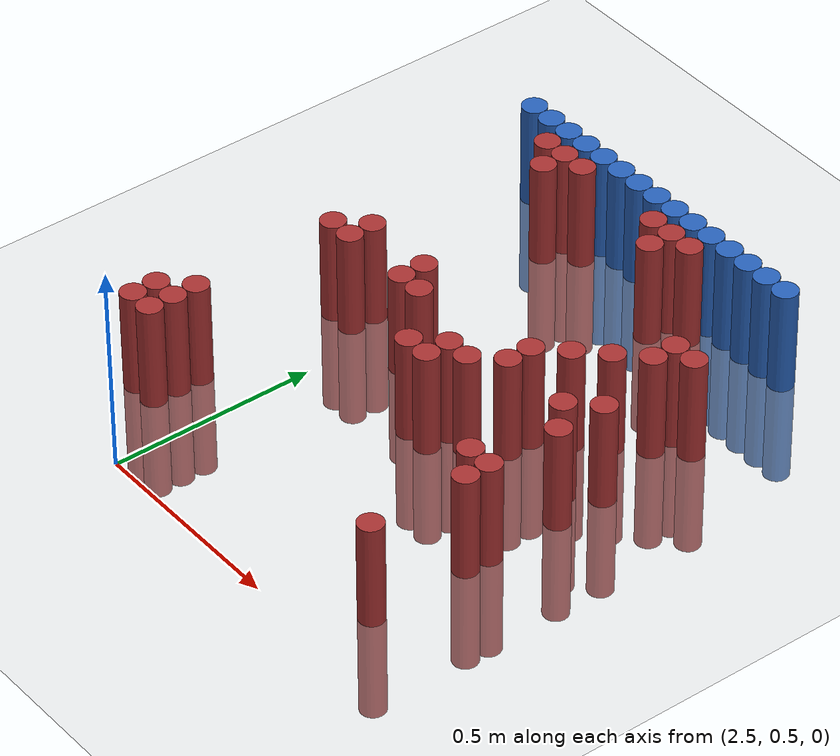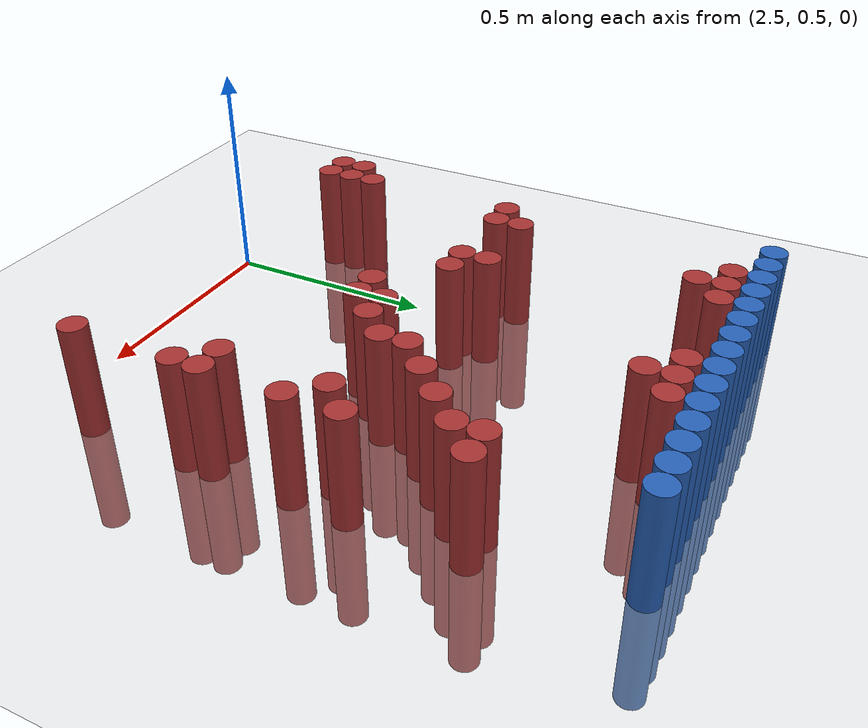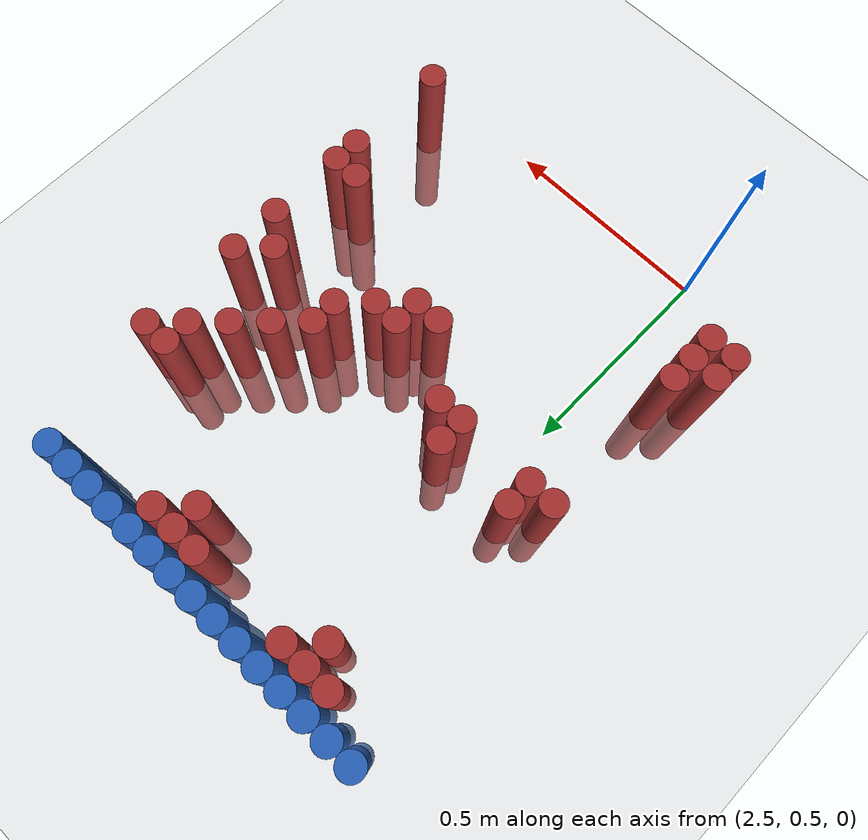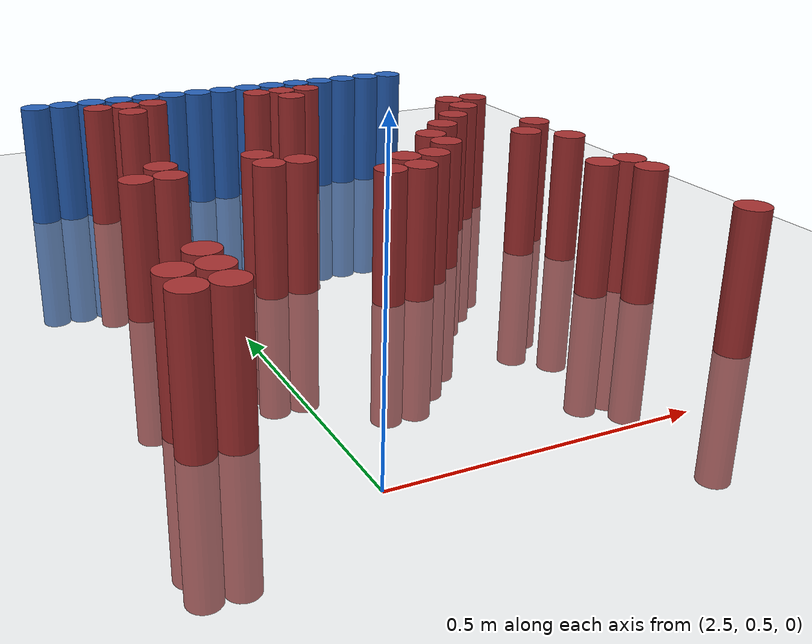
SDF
<sdf version="1.6">
 <world name="default">
  <model name="ground_plane">
   <static>1</static>
   <link name="link">
    <collision name="collision">
     <geometry><plane><normal>0 0 1</normal><size>100 100</size></plane></geometry>
     <surface><friction><ode><mu>100</mu><mu2>50</mu2></ode></friction></surface>
    </collision>
    <visual name="visual">
     <cast_shadows>0</cast_shadows>
     <geometry><plane><normal>0 0 1</normal><size>100 100</size></plane></geometry>
     <material>
      <script><uri>file://media/materials/scripts/gazebo.material</uri><name>Gazebo/Grey</name></script>
     </material>
    </visual>
   </link>
  </model>
  <model name="unit_cylinder_99">
   <static>1</static>
   <pose>2.310000 1.770000 0.000000 0.000000 0.000000 0.000000</pose>
   <link name="link">
    <inertial>
     <mass>1</mass>
     <inertia><ixx>0.145833</ixx><ixy>0</ixy><ixz>0</ixz><iyy>0.145833</iyy><iyz>0</iyz><izz>0.125</izz></inertia>
    </inertial>
    <collision name="collision">
     <geometry><cylinder><radius>0.030000</radius><length>0.5</length></cylinder></geometry>
    </collision>
    <visual name="visual">
     <geometry><cylinder><radius>0.030000</radius><length>0.5</length></cylinder></geometry>
     <material>
      <ambient>0.152000 0.379000 0.720000 1</ambient>
      <diffuse>0.152000 0.379000 0.720000 1</diffuse>
     </material>
     <material>
      <script><name>Gazebo/Grey</name><uri>file://media/materials/scripts/gazebo.material</uri></script>
     </material>
    </visual>
   </link>
  </model>
  <model name="unit_cylinder_100">
   <static>1</static>
   <pose>2.370000 1.770000 0.000000 0.000000 0.000000 0.000000</pose>
   <link name="link">
    <inertial>
     <mass>1</mass>
     <inertia><ixx>0.145833</ixx><ixy>0</ixy><ixz>0</ixz><iyy>0.145833</iyy><iyz>0</iyz><izz>0.125</izz></inertia>
    </inertial>
    <collision name="collision">
     <geometry><cylinder><radius>0.030000</radius><length>0.5</length></cylinder></geometry>
    </collision>
    <visual name="visual">
     <geometry><cylinder><radius>0.030000</radius><length>0.5</length></cylinder></geometry>
     <material>
      <ambient>0.152000 0.379000 0.720000 1</ambient>
      <diffuse>0.152000 0.379000 0.720000 1</diffuse>
     </material>
     <material>
      <script><name>Gazebo/Grey</name><uri>file://media/materials/scripts/gazebo.material</uri></script>
     </material>
    </visual>
   </link>
  </model>
  <model name="unit_cylinder_101">
   <static>1</static>
   <pose>2.430000 1.770000 0.000000 0.000000 0.000000 0.000000</pose>
   <link name="link">
    <inertial>
     <mass>1</mass>
     <inertia><ixx>0.145833</ixx><ixy>0</ixy><ixz>0</ixz><iyy>0.145833</iyy><iyz>0</iyz><izz>0.125</izz></inertia>
    </inertial>
    <collision name="collision">
     <geometry><cylinder><radius>0.030000</radius><length>0.5</length></cylinder></geometry>
    </collision>
    <visual name="visual">
     <geometry><cylinder><radius>0.030000</radius><length>0.5</length></cylinder></geometry>
     <material>
      <ambient>0.152000 0.379000 0.720000 1</ambient>
      <diffuse>0.152000 0.379000 0.720000 1</diffuse>
     </material>
     <material>
      <script><name>Gazebo/Grey</name><uri>file://media/materials/scripts/gazebo.material</uri></script>
     </material>
    </visual>
   </link>
  </model>
  <model name="unit_cylinder_102">
   <static>1</static>
   <pose>2.490000 1.770000 0.000000 0.000000 0.000000 0.000000</pose>
   <link name="link">
    <inertial>
     <mass>1</mass>
     <inertia><ixx>0.145833</ixx><ixy>0</ixy><ixz>0</ixz><iyy>0.145833</iyy><iyz>0</iyz><izz>0.125</izz></inertia>
    </inertial>
    <collision name="collision">
     <geometry><cylinder><radius>0.030000</radius><length>0.5</length></cylinder></geometry>
    </collision>
    <visual name="visual">
     <geometry><cylinder><radius>0.030000</radius><length>0.5</length></cylinder></geometry>
     <material>
      <ambient>0.152000 0.379000 0.720000 1</ambient>
      <diffuse>0.152000 0.379000 0.720000 1</diffuse>
     </material>
     <material>
      <script><name>Gazebo/Grey</name><uri>file://media/materials/scripts/gazebo.material</uri></script>
     </material>
    </visual>
   </link>
  </model>
  <model name="unit_cylinder_103">
   <static>1</static>
   <pose>2.550000 1.770000 0.000000 0.000000 0.000000 0.000000</pose>
   <link name="link">
    <inertial>
     <mass>1</mass>
     <inertia><ixx>0.145833</ixx><ixy>0</ixy><ixz>0</ixz><iyy>0.145833</iyy><iyz>0</iyz><izz>0.125</izz></inertia>
    </inertial>
    <collision name="collision">
     <geometry><cylinder><radius>0.030000</radius><length>0.5</length></cylinder></geometry>
    </collision>
    <visual name="visual">
     <geometry><cylinder><radius>0.030000</radius><length>0.5</length></cylinder></geometry>
     <material>
      <ambient>0.152000 0.379000 0.720000 1</ambient>
      <diffuse>0.152000 0.379000 0.720000 1</diffuse>
     </material>
     <material>
      <script><name>Gazebo/Grey</name><uri>file://media/materials/scripts/gazebo.material</uri></script>
     </material>
    </visual>
   </link>
  </model>
  <model name="unit_cylinder_104">
   <static>1</static>
   <pose>2.610000 1.770000 0.000000 0.000000 0.000000 0.000000</pose>
   <link name="link">
    <inertial>
     <mass>1</mass>
     <inertia><ixx>0.145833</ixx><ixy>0</ixy><ixz>0</ixz><iyy>0.145833</iyy><iyz>0</iyz><izz>0.125</izz></inertia>
    </inertial>
    <collision name="collision">
     <geometry><cylinder><radius>0.030000</radius><length>0.5</length></cylinder></geometry>
    </collision>
    <visual name="visual">
     <geometry><cylinder><radius>0.030000</radius><length>0.5</length></cylinder></geometry>
     <material>
      <ambient>0.152000 0.379000 0.720000 1</ambient>
      <diffuse>0.152000 0.379000 0.720000 1</diffuse>
     </material>
     <material>
      <script><name>Gazebo/Grey</name><uri>file://media/materials/scripts/gazebo.material</uri></script>
     </material>
    </visual>
   </link>
  </model>
  <model name="unit_cylinder_105">
   <static>1</static>
   <pose>2.670000 1.770000 0.000000 0.000000 0.000000 0.000000</pose>
   <link name="link">
    <inertial>
     <mass>1</mass>
     <inertia><ixx>0.145833</ixx><ixy>0</ixy><ixz>0</ixz><iyy>0.145833</iyy><iyz>0</iyz><izz>0.125</izz></inertia>
    </inertial>
    <collision name="collision">
     <geometry><cylinder><radius>0.030000</radius><length>0.5</length></cylinder></geometry>
    </collision>
    <visual name="visual">
     <geometry><cylinder><radius>0.030000</radius><length>0.5</length></cylinder></geometry>
     <material>
      <ambient>0.152000 0.379000 0.720000 1</ambient>
      <diffuse>0.152000 0.379000 0.720000 1</diffuse>
     </material>
     <material>
      <script><name>Gazebo/Grey</name><uri>file://media/materials/scripts/gazebo.material</uri></script>
     </material>
    </visual>
   </link>
  </model>
  <model name="unit_cylinder_106">
   <static>1</static>
   <pose>2.730000 1.770000 0.000000 0.000000 0.000000 0.000000</pose>
   <link name="link">
    <inertial>
     <mass>1</mass>
     <inertia><ixx>0.145833</ixx><ixy>0</ixy><ixz>0</ixz><iyy>0.145833</iyy><iyz>0</iyz><izz>0.125</izz></inertia>
    </inertial>
    <collision name="collision">
     <geometry><cylinder><radius>0.030000</radius><length>0.5</length></cylinder></geometry>
    </collision>
    <visual name="visual">
     <geometry><cylinder><radius>0.030000</radius><length>0.5</length></cylinder></geometry>
     <material>
      <ambient>0.152000 0.379000 0.720000 1</ambient>
      <diffuse>0.152000 0.379000 0.720000 1</diffuse>
     </material>
     <material>
      <script><name>Gazebo/Grey</name><uri>file://media/materials/scripts/gazebo.material</uri></script>
     </material>
    </visual>
   </link>
  </model>
  <model name="unit_cylinder_107">
   <static>1</static>
   <pose>2.790000 1.770000 0.000000 0.000000 0.000000 0.000000</pose>
   <link name="link">
    <inertial>
     <mass>1</mass>
     <inertia><ixx>0.145833</ixx><ixy>0</ixy><ixz>0</ixz><iyy>0.145833</iyy><iyz>0</iyz><izz>0.125</izz></inertia>
    </inertial>
    <collision name="collision">
     <geometry><cylinder><radius>0.030000</radius><length>0.5</length></cylinder></geometry>
    </collision>
    <visual name="visual">
     <geometry><cylinder><radius>0.030000</radius><length>0.5</length></cylinder></geometry>
     <material>
      <ambient>0.152000 0.379000 0.720000 1</ambient>
      <diffuse>0.152000 0.379000 0.720000 1</diffuse>
     </material>
     <material>
      <script><name>Gazebo/Grey</name><uri>file://media/materials/scripts/gazebo.material</uri></script>
     </material>
    </visual>
   </link>
  </model>
  <model name="unit_cylinder_108">
   <static>1</static>
   <pose>2.850000 1.770000 0.000000 0.000000 0.000000 0.000000</pose>
   <link name="link">
    <inertial>
     <mass>1</mass>
     <inertia><ixx>0.145833</ixx><ixy>0</ixy><ixz>0</ixz><iyy>0.145833</iyy><iyz>0</iyz><izz>0.125</izz></inertia>
    </inertial>
    <collision name="collision">
     <geometry><cylinder><radius>0.030000</radius><length>0.5</length></cylinder></geometry>
    </collision>
    <visual name="visual">
     <geometry><cylinder><radius>0.030000</radius><length>0.5</length></cylinder></geometry>
     <material>
      <ambient>0.152000 0.379000 0.720000 1</ambient>
      <diffuse>0.152000 0.379000 0.720000 1</diffuse>
     </material>
     <material>
      <script><name>Gazebo/Grey</name><uri>file://media/materials/scripts/gazebo.material</uri></script>
     </material>
    </visual>
   </link>
  </model>
  <model name="unit_cylinder_109">
   <static>1</static>
   <pose>2.910000 1.770000 0.000000 0.000000 0.000000 0.000000</pose>
   <link name="link">
    <inertial>
     <mass>1</mass>
     <inertia><ixx>0.145833</ixx><ixy>0</ixy><ixz>0</ixz><iyy>0.145833</iyy><iyz>0</iyz><izz>0.125</izz></inertia>
    </inertial>
    <collision name="collision">
     <geometry><cylinder><radius>0.030000</radius><length>0.5</length></cylinder></geometry>
    </collision>
    <visual name="visual">
     <geometry><cylinder><radius>0.030000</radius><length>0.5</length></cylinder></geometry>
     <material>
      <ambient>0.152000 0.379000 0.720000 1</ambient>
      <diffuse>0.152000 0.379000 0.720000 1</diffuse>
     </material>
     <material>
      <script><name>Gazebo/Grey</name><uri>file://media/materials/scripts/gazebo.material</uri></script>
     </material>
    </visual>
   </link>
  </model>
  <model name="unit_cylinder_110">
   <static>1</static>
   <pose>2.970000 1.770000 0.000000 0.000000 0.000000 0.000000</pose>
   <link name="link">
    <inertial>
     <mass>1</mass>
     <inertia><ixx>0.145833</ixx><ixy>0</ixy><ixz>0</ixz><iyy>0.145833</iyy><iyz>0</iyz><izz>0.125</izz></inertia>
    </inertial>
    <collision name="collision">
     <geometry><cylinder><radius>0.030000</radius><length>0.5</length></cylinder></geometry>
    </collision>
    <visual name="visual">
     <geometry><cylinder><radius>0.030000</radius><length>0.5</length></cylinder></geometry>
     <material>
      <ambient>0.152000 0.379000 0.720000 1</ambient>
      <diffuse>0.152000 0.379000 0.720000 1</diffuse>
     </material>
     <material>
      <script><name>Gazebo/Grey</name><uri>file://media/materials/scripts/gazebo.material</uri></script>
     </material>
    </visual>
   </link>
  </model>
  <model name="unit_cylinder_111">
   <static>1</static>
   <pose>3.030000 1.770000 0.000000 0.000000 0.000000 0.000000</pose>
   <link name="link">
    <inertial>
     <mass>1</mass>
     <inertia><ixx>0.145833</ixx><ixy>0</ixy><ixz>0</ixz><iyy>0.145833</iyy><iyz>0</iyz><izz>0.125</izz></inertia>
    </inertial>
    <collision name="collision">
     <geometry><cylinder><radius>0.030000</radius><length>0.5</length></cylinder></geometry>
    </collision>
    <visual name="visual">
     <geometry><cylinder><radius>0.030000</radius><length>0.5</length></cylinder></geometry>
     <material>
      <ambient>0.152000 0.379000 0.720000 1</ambient>
      <diffuse>0.152000 0.379000 0.720000 1</diffuse>
     </material>
     <material>
      <script><name>Gazebo/Grey</name><uri>file://media/materials/scripts/gazebo.material</uri></script>
     </material>
    </visual>
   </link>
  </model>
  <model name="unit_cylinder_112">
   <static>1</static>
   <pose>3.090000 1.770000 0.000000 0.000000 0.000000 0.000000</pose>
   <link name="link">
    <inertial>
     <mass>1</mass>
     <inertia><ixx>0.145833</ixx><ixy>0</ixy><ixz>0</ixz><iyy>0.145833</iyy><iyz>0</iyz><izz>0.125</izz></inertia>
    </inertial>
    <collision name="collision">
     <geometry><cylinder><radius>0.030000</radius><length>0.5</length></cylinder></geometry>
    </collision>
    <visual name="visual">
     <geometry><cylinder><radius>0.030000</radius><length>0.5</length></cylinder></geometry>
     <material>
      <ambient>0.152000 0.379000 0.720000 1</ambient>
      <diffuse>0.152000 0.379000 0.720000 1</diffuse>
     </material>
     <material>
      <script><name>Gazebo/Grey</name><uri>file://media/materials/scripts/gazebo.material</uri></script>
     </material>
    </visual>
   </link>
  </model>
  <model name="unit_cylinder_113">
   <static>1</static>
   <pose>3.150000 1.770000 0.000000 0.000000 0.000000 0.000000</pose>
   <link name="link">
    <inertial>
     <mass>1</mass>
     <inertia><ixx>0.145833</ixx><ixy>0</ixy><ixz>0</ixz><iyy>0.145833</iyy><iyz>0</iyz><izz>0.125</izz></inertia>
    </inertial>
    <collision name="collision">
     <geometry><cylinder><radius>0.030000</radius><length>0.5</length></cylinder></geometry>
    </collision>
    <visual name="visual">
     <geometry><cylinder><radius>0.030000</radius><length>0.5</length></cylinder></geometry>
     <material>
      <ambient>0.152000 0.379000 0.720000 1</ambient>
      <diffuse>0.152000 0.379000 0.720000 1</diffuse>
     </material>
     <material>
      <script><name>Gazebo/Grey</name><uri>file://media/materials/scripts/gazebo.material</uri></script>
     </material>
    </visual>
   </link>
  </model>
  <model name="unit_cylinder_126">
   <static>1</static>
   <pose>2.430000 1.710000 0.000000 0.000000 0.000000 0.000000</pose>
   <link name="link">
    <inertial>
     <mass>1</mass>
     <inertia><ixx>0.145833</ixx><ixy>0</ixy><ixz>0</ixz><iyy>0.145833</iyy><iyz>0</iyz><izz>0.125</izz></inertia>
    </inertial>
    <collision name="collision">
     <geometry><cylinder><radius>0.030000</radius><length>0.5</length></cylinder></geometry>
    </collision>
    <visual name="visual">
     <geometry><cylinder><radius>0.030000</radius><length>0.5</length></cylinder></geometry>
     <material>
      <ambient>0.648000 0.192000 0.192000 1</ambient>
      <diffuse>0.648000 0.192000 0.192000 1</diffuse>
     </material>
     <material>
      <script><name>Gazebo/Grey</name><uri>file://media/materials/scripts/gazebo.material</uri></script>
     </material>
    </visual>
   </link>
  </model>
  <model name="unit_cylinder_127">
   <static>1</static>
   <pose>2.490000 1.710000 0.000000 0.000000 0.000000 0.000000</pose>
   <link name="link">
    <inertial>
     <mass>1</mass>
     <inertia><ixx>0.145833</ixx><ixy>0</ixy><ixz>0</ixz><iyy>0.145833</iyy><iyz>0</iyz><izz>0.125</izz></inertia>
    </inertial>
    <collision name="collision">
     <geometry><cylinder><radius>0.030000</radius><length>0.5</length></cylinder></geometry>
    </collision>
    <visual name="visual">
     <geometry><cylinder><radius>0.030000</radius><length>0.5</length></cylinder></geometry>
     <material>
      <ambient>0.648000 0.192000 0.192000 1</ambient>
      <diffuse>0.648000 0.192000 0.192000 1</diffuse>
     </material>
     <material>
      <script><name>Gazebo/Grey</name><uri>file://media/materials/scripts/gazebo.material</uri></script>
     </material>
    </visual>
   </link>
  </model>
  <model name="unit_cylinder_128">
   <static>1</static>
   <pose>2.550000 1.710000 0.000000 0.000000 0.000000 0.000000</pose>
   <link name="link">
    <inertial>
     <mass>1</mass>
     <inertia><ixx>0.145833</ixx><ixy>0</ixy><ixz>0</ixz><iyy>0.145833</iyy><iyz>0</iyz><izz>0.125</izz></inertia>
    </inertial>
    <collision name="collision">
     <geometry><cylinder><radius>0.030000</radius><length>0.5</length></cylinder></geometry>
    </collision>
    <visual name="visual">
     <geometry><cylinder><radius>0.030000</radius><length>0.5</length></cylinder></geometry>
     <material>
      <ambient>0.648000 0.192000 0.192000 1</ambient>
      <diffuse>0.648000 0.192000 0.192000 1</diffuse>
     </material>
     <material>
      <script><name>Gazebo/Grey</name><uri>file://media/materials/scripts/gazebo.material</uri></script>
     </material>
    </visual>
   </link>
  </model>
  <model name="unit_cylinder_129">
   <static>1</static>
   <pose>2.790000 1.710000 0.000000 0.000000 0.000000 0.000000</pose>
   <link name="link">
    <inertial>
     <mass>1</mass>
     <inertia><ixx>0.145833</ixx><ixy>0</ixy><ixz>0</ixz><iyy>0.145833</iyy><iyz>0</iyz><izz>0.125</izz></inertia>
    </inertial>
    <collision name="collision">
     <geometry><cylinder><radius>0.030000</radius><length>0.5</length></cylinder></geometry>
    </collision>
    <visual name="visual">
     <geometry><cylinder><radius>0.030000</radius><length>0.5</length></cylinder></geometry>
     <material>
      <ambient>0.648000 0.192000 0.192000 1</ambient>
      <diffuse>0.648000 0.192000 0.192000 1</diffuse>
     </material>
     <material>
      <script><name>Gazebo/Grey</name><uri>file://media/materials/scripts/gazebo.material</uri></script>
     </material>
    </visual>
   </link>
  </model>
  <model name="unit_cylinder_130">
   <static>1</static>
   <pose>2.850000 1.710000 0.000000 0.000000 0.000000 0.000000</pose>
   <link name="link">
    <inertial>
     <mass>1</mass>
     <inertia><ixx>0.145833</ixx><ixy>0</ixy><ixz>0</ixz><iyy>0.145833</iyy><iyz>0</iyz><izz>0.125</izz></inertia>
    </inertial>
    <collision name="collision">
     <geometry><cylinder><radius>0.030000</radius><length>0.5</length></cylinder></geometry>
    </collision>
    <visual name="visual">
     <geometry><cylinder><radius>0.030000</radius><length>0.5</length></cylinder></geometry>
     <material>
      <ambient>0.648000 0.192000 0.192000 1</ambient>
      <diffuse>0.648000 0.192000 0.192000 1</diffuse>
     </material>
     <material>
      <script><name>Gazebo/Grey</name><uri>file://media/materials/scripts/gazebo.material</uri></script>
     </material>
    </visual>
   </link>
  </model>
  <model name="unit_cylinder_131">
   <static>1</static>
   <pose>2.910000 1.710000 0.000000 0.000000 0.000000 0.000000</pose>
   <link name="link">
    <inertial>
     <mass>1</mass>
     <inertia><ixx>0.145833</ixx><ixy>0</ixy><ixz>0</ixz><iyy>0.145833</iyy><iyz>0</iyz><izz>0.125</izz></inertia>
    </inertial>
    <collision name="collision">
     <geometry><cylinder><radius>0.030000</radius><length>0.5</length></cylinder></geometry>
    </collision>
    <visual name="visual">
     <geometry><cylinder><radius>0.030000</radius><length>0.5</length></cylinder></geometry>
     <material>
      <ambient>0.648000 0.192000 0.192000 1</ambient>
      <diffuse>0.648000 0.192000 0.192000 1</diffuse>
     </material>
     <material>
      <script><name>Gazebo/Grey</name><uri>file://media/materials/scripts/gazebo.material</uri></script>
     </material>
    </visual>
   </link>
  </model>
  <model name="unit_cylinder_138">
   <static>1</static>
   <pose>2.490000 1.650000 0.000000 0.000000 0.000000 0.000000</pose>
   <link name="link">
    <inertial>
     <mass>1</mass>
     <inertia><ixx>0.145833</ixx><ixy>0</ixy><ixz>0</ixz><iyy>0.145833</iyy><iyz>0</iyz><izz>0.125</izz></inertia>
    </inertial>
    <collision name="collision">
     <geometry><cylinder><radius>0.030000</radius><length>0.5</length></cylinder></geometry>
    </collision>
    <visual name="visual">
     <geometry><cylinder><radius>0.030000</radius><length>0.5</length></cylinder></geometry>
     <material>
      <ambient>0.648000 0.192000 0.192000 1</ambient>
      <diffuse>0.648000 0.192000 0.192000 1</diffuse>
     </material>
     <material>
      <script><name>Gazebo/Grey</name><uri>file://media/materials/scripts/gazebo.material</uri></script>
     </material>
    </visual>
   </link>
  </model>
  <model name="unit_cylinder_139">
   <static>1</static>
   <pose>2.850000 1.650000 0.000000 0.000000 0.000000 0.000000</pose>
   <link name="link">
    <inertial>
     <mass>1</mass>
     <inertia><ixx>0.145833</ixx><ixy>0</ixy><ixz>0</ixz><iyy>0.145833</iyy><iyz>0</iyz><izz>0.125</izz></inertia>
    </inertial>
    <collision name="collision">
     <geometry><cylinder><radius>0.030000</radius><length>0.5</length></cylinder></geometry>
    </collision>
    <visual name="visual">
     <geometry><cylinder><radius>0.030000</radius><length>0.5</length></cylinder></geometry>
     <material>
      <ambient>0.648000 0.192000 0.192000 1</ambient>
      <diffuse>0.648000 0.192000 0.192000 1</diffuse>
     </material>
     <material>
      <script><name>Gazebo/Grey</name><uri>file://media/materials/scripts/gazebo.material</uri></script>
     </material>
    </visual>
   </link>
  </model>
  <model name="unit_cylinder_145">
   <static>1</static>
   <pose>3.150000 1.470000 0.000000 0.000000 0.000000 0.000000</pose>
   <link name="link">
    <inertial>
     <mass>1</mass>
     <inertia><ixx>0.145833</ixx><ixy>0</ixy><ixz>0</ixz><iyy>0.145833</iyy><iyz>0</iyz><izz>0.125</izz></inertia>
    </inertial>
    <collision name="collision">
     <geometry><cylinder><radius>0.030000</radius><length>0.5</length></cylinder></geometry>
    </collision>
    <visual name="visual">
     <geometry><cylinder><radius>0.030000</radius><length>0.5</length></cylinder></geometry>
     <material>
      <ambient>0.648000 0.192000 0.192000 1</ambient>
      <diffuse>0.648000 0.192000 0.192000 1</diffuse>
     </material>
     <material>
      <script><name>Gazebo/Grey</name><uri>file://media/materials/scripts/gazebo.material</uri></script>
     </material>
    </visual>
   </link>
  </model>
  <model name="unit_cylinder_146">
   <static>1</static>
   <pose>3.210000 1.470000 0.000000 0.000000 0.000000 0.000000</pose>
   <link name="link">
    <inertial>
     <mass>1</mass>
     <inertia><ixx>0.145833</ixx><ixy>0</ixy><ixz>0</ixz><iyy>0.145833</iyy><iyz>0</iyz><izz>0.125</izz></inertia>
    </inertial>
    <collision name="collision">
     <geometry><cylinder><radius>0.030000</radius><length>0.5</length></cylinder></geometry>
    </collision>
    <visual name="visual">
     <geometry><cylinder><radius>0.030000</radius><length>0.5</length></cylinder></geometry>
     <material>
      <ambient>0.648000 0.192000 0.192000 1</ambient>
      <diffuse>0.648000 0.192000 0.192000 1</diffuse>
     </material>
     <material>
      <script><name>Gazebo/Grey</name><uri>file://media/materials/scripts/gazebo.material</uri></script>
     </material>
    </visual>
   </link>
  </model>
  <model name="unit_cylinder_150">
   <static>1</static>
   <pose>3.150000 1.410000 0.000000 0.000000 0.000000 0.000000</pose>
   <link name="link">
    <inertial>
     <mass>1</mass>
     <inertia><ixx>0.145833</ixx><ixy>0</ixy><ixz>0</ixz><iyy>0.145833</iyy><iyz>0</iyz><izz>0.125</izz></inertia>
    </inertial>
    <collision name="collision">
     <geometry><cylinder><radius>0.030000</radius><length>0.5</length></cylinder></geometry>
    </collision>
    <visual name="visual">
     <geometry><cylinder><radius>0.030000</radius><length>0.5</length></cylinder></geometry>
     <material>
      <ambient>0.648000 0.192000 0.192000 1</ambient>
      <diffuse>0.648000 0.192000 0.192000 1</diffuse>
     </material>
     <material>
      <script><name>Gazebo/Grey</name><uri>file://media/materials/scripts/gazebo.material</uri></script>
     </material>
    </visual>
   </link>
  </model>
  <model name="unit_cylinder_155">
   <static>1</static>
   <pose>3.090000 1.350000 0.000000 0.000000 0.000000 0.000000</pose>
   <link name="link">
    <inertial>
     <mass>1</mass>
     <inertia><ixx>0.145833</ixx><ixy>0</ixy><ixz>0</ixz><iyy>0.145833</iyy><iyz>0</iyz><izz>0.125</izz></inertia>
    </inertial>
    <collision name="collision">
     <geometry><cylinder><radius>0.030000</radius><length>0.5</length></cylinder></geometry>
    </collision>
    <visual name="visual">
     <geometry><cylinder><radius>0.030000</radius><length>0.5</length></cylinder></geometry>
     <material>
      <ambient>0.648000 0.192000 0.192000 1</ambient>
      <diffuse>0.648000 0.192000 0.192000 1</diffuse>
     </material>
     <material>
      <script><name>Gazebo/Grey</name><uri>file://media/materials/scripts/gazebo.material</uri></script>
     </material>
    </visual>
   </link>
  </model>
  <model name="unit_cylinder_161">
   <static>1</static>
   <pose>3.030000 1.290000 0.000000 0.000000 0.000000 0.000000</pose>
   <link name="link">
    <inertial>
     <mass>1</mass>
     <inertia><ixx>0.145833</ixx><ixy>0</ixy><ixz>0</ixz><iyy>0.145833</iyy><iyz>0</iyz><izz>0.125</izz></inertia>
    </inertial>
    <collision name="collision">
     <geometry><cylinder><radius>0.030000</radius><length>0.5</length></cylinder></geometry>
    </collision>
    <visual name="visual">
     <geometry><cylinder><radius>0.030000</radius><length>0.5</length></cylinder></geometry>
     <material>
      <ambient>0.648000 0.192000 0.192000 1</ambient>
      <diffuse>0.648000 0.192000 0.192000 1</diffuse>
     </material>
     <material>
      <script><name>Gazebo/Grey</name><uri>file://media/materials/scripts/gazebo.material</uri></script>
     </material>
    </visual>
   </link>
  </model>
  <model name="unit_cylinder_163">
   <static>1</static>
   <pose>2.430000 1.230000 0.000000 0.000000 0.000000 0.000000</pose>
   <link name="link">
    <inertial>
     <mass>1</mass>
     <inertia><ixx>0.145833</ixx><ixy>0</ixy><ixz>0</ixz><iyy>0.145833</iyy><iyz>0</iyz><izz>0.125</izz></inertia>
    </inertial>
    <collision name="collision">
     <geometry><cylinder><radius>0.030000</radius><length>0.5</length></cylinder></geometry>
    </collision>
    <visual name="visual">
     <geometry><cylinder><radius>0.030000</radius><length>0.5</length></cylinder></geometry>
     <material>
      <ambient>0.648000 0.192000 0.192000 1</ambient>
      <diffuse>0.648000 0.192000 0.192000 1</diffuse>
     </material>
     <material>
      <script><name>Gazebo/Grey</name><uri>file://media/materials/scripts/gazebo.material</uri></script>
     </material>
    </visual>
   </link>
  </model>
  <model name="unit_cylinder_164">
   <static>1</static>
   <pose>2.610000 1.230000 0.000000 0.000000 0.000000 0.000000</pose>
   <link name="link">
    <inertial>
     <mass>1</mass>
     <inertia><ixx>0.145833</ixx><ixy>0</ixy><ixz>0</ixz><iyy>0.145833</iyy><iyz>0</iyz><izz>0.125</izz></inertia>
    </inertial>
    <collision name="collision">
     <geometry><cylinder><radius>0.030000</radius><length>0.5</length></cylinder></geometry>
    </collision>
    <visual name="visual">
     <geometry><cylinder><radius>0.030000</radius><length>0.5</length></cylinder></geometry>
     <material>
      <ambient>0.648000 0.192000 0.192000 1</ambient>
      <diffuse>0.648000 0.192000 0.192000 1</diffuse>
     </material>
     <material>
      <script><name>Gazebo/Grey</name><uri>file://media/materials/scripts/gazebo.material</uri></script>
     </material>
    </visual>
   </link>
  </model>
  <model name="unit_cylinder_165">
   <static>1</static>
   <pose>2.970000 1.230000 0.000000 0.000000 0.000000 0.000000</pose>
   <link name="link">
    <inertial>
     <mass>1</mass>
     <inertia><ixx>0.145833</ixx><ixy>0</ixy><ixz>0</ixz><iyy>0.145833</iyy><iyz>0</iyz><izz>0.125</izz></inertia>
    </inertial>
    <collision name="collision">
     <geometry><cylinder><radius>0.030000</radius><length>0.5</length></cylinder></geometry>
    </collision>
    <visual name="visual">
     <geometry><cylinder><radius>0.030000</radius><length>0.5</length></cylinder></geometry>
     <material>
      <ambient>0.648000 0.192000 0.192000 1</ambient>
      <diffuse>0.648000 0.192000 0.192000 1</diffuse>
     </material>
     <material>
      <script><name>Gazebo/Grey</name><uri>file://media/materials/scripts/gazebo.material</uri></script>
     </material>
    </visual>
   </link>
  </model>
  <model name="unit_cylinder_166">
   <static>1</static>
   <pose>3.210000 1.230000 0.000000 0.000000 0.000000 0.000000</pose>
   <link name="link">
    <inertial>
     <mass>1</mass>
     <inertia><ixx>0.145833</ixx><ixy>0</ixy><ixz>0</ixz><iyy>0.145833</iyy><iyz>0</iyz><izz>0.125</izz></inertia>
    </inertial>
    <collision name="collision">
     <geometry><cylinder><radius>0.030000</radius><length>0.5</length></cylinder></geometry>
    </collision>
    <visual name="visual">
     <geometry><cylinder><radius>0.030000</radius><length>0.5</length></cylinder></geometry>
     <material>
      <ambient>0.648000 0.192000 0.192000 1</ambient>
      <diffuse>0.648000 0.192000 0.192000 1</diffuse>
     </material>
     <material>
      <script><name>Gazebo/Grey</name><uri>file://media/materials/scripts/gazebo.material</uri></script>
     </material>
    </visual>
   </link>
  </model>
  <model name="unit_cylinder_168">
   <static>1</static>
   <pose>2.370000 1.170000 0.000000 0.000000 0.000000 0.000000</pose>
   <link name="link">
    <inertial>
     <mass>1</mass>
     <inertia><ixx>0.145833</ixx><ixy>0</ixy><ixz>0</ixz><iyy>0.145833</iyy><iyz>0</iyz><izz>0.125</izz></inertia>
    </inertial>
    <collision name="collision">
     <geometry><cylinder><radius>0.030000</radius><length>0.5</length></cylinder></geometry>
    </collision>
    <visual name="visual">
     <geometry><cylinder><radius>0.030000</radius><length>0.5</length></cylinder></geometry>
     <material>
      <ambient>0.648000 0.192000 0.192000 1</ambient>
      <diffuse>0.648000 0.192000 0.192000 1</diffuse>
     </material>
     <material>
      <script><name>Gazebo/Grey</name><uri>file://media/materials/scripts/gazebo.material</uri></script>
     </material>
    </visual>
   </link>
  </model>
  <model name="unit_cylinder_169">
   <static>1</static>
   <pose>2.430000 1.170000 0.000000 0.000000 0.000000 0.000000</pose>
   <link name="link">
    <inertial>
     <mass>1</mass>
     <inertia><ixx>0.145833</ixx><ixy>0</ixy><ixz>0</ixz><iyy>0.145833</iyy><iyz>0</iyz><izz>0.125</izz></inertia>
    </inertial>
    <collision name="collision">
     <geometry><cylinder><radius>0.030000</radius><length>0.5</length></cylinder></geometry>
    </collision>
    <visual name="visual">
     <geometry><cylinder><radius>0.030000</radius><length>0.5</length></cylinder></geometry>
     <material>
      <ambient>0.648000 0.192000 0.192000 1</ambient>
      <diffuse>0.648000 0.192000 0.192000 1</diffuse>
     </material>
     <material>
      <script><name>Gazebo/Grey</name><uri>file://media/materials/scripts/gazebo.material</uri></script>
     </material>
    </visual>
   </link>
  </model>
  <model name="unit_cylinder_170">
   <static>1</static>
   <pose>2.610000 1.170000 0.000000 0.000000 0.000000 0.000000</pose>
   <link name="link">
    <inertial>
     <mass>1</mass>
     <inertia><ixx>0.145833</ixx><ixy>0</ixy><ixz>0</ixz><iyy>0.145833</iyy><iyz>0</iyz><izz>0.125</izz></inertia>
    </inertial>
    <collision name="collision">
     <geometry><cylinder><radius>0.030000</radius><length>0.5</length></cylinder></geometry>
    </collision>
    <visual name="visual">
     <geometry><cylinder><radius>0.030000</radius><length>0.5</length></cylinder></geometry>
     <material>
      <ambient>0.648000 0.192000 0.192000 1</ambient>
      <diffuse>0.648000 0.192000 0.192000 1</diffuse>
     </material>
     <material>
      <script><name>Gazebo/Grey</name><uri>file://media/materials/scripts/gazebo.material</uri></script>
     </material>
    </visual>
   </link>
  </model>
  <model name="unit_cylinder_171">
   <static>1</static>
   <pose>2.670000 1.170000 0.000000 0.000000 0.000000 0.000000</pose>
   <link name="link">
    <inertial>
     <mass>1</mass>
     <inertia><ixx>0.145833</ixx><ixy>0</ixy><ixz>0</ixz><iyy>0.145833</iyy><iyz>0</iyz><izz>0.125</izz></inertia>
    </inertial>
    <collision name="collision">
     <geometry><cylinder><radius>0.030000</radius><length>0.5</length></cylinder></geometry>
    </collision>
    <visual name="visual">
     <geometry><cylinder><radius>0.030000</radius><length>0.5</length></cylinder></geometry>
     <material>
      <ambient>0.648000 0.192000 0.192000 1</ambient>
      <diffuse>0.648000 0.192000 0.192000 1</diffuse>
     </material>
     <material>
      <script><name>Gazebo/Grey</name><uri>file://media/materials/scripts/gazebo.material</uri></script>
     </material>
    </visual>
   </link>
  </model>
  <model name="unit_cylinder_172">
   <static>1</static>
   <pose>2.970000 1.170000 0.000000 0.000000 0.000000 0.000000</pose>
   <link name="link">
    <inertial>
     <mass>1</mass>
     <inertia><ixx>0.145833</ixx><ixy>0</ixy><ixz>0</ixz><iyy>0.145833</iyy><iyz>0</iyz><izz>0.125</izz></inertia>
    </inertial>
    <collision name="collision">
     <geometry><cylinder><radius>0.030000</radius><length>0.5</length></cylinder></geometry>
    </collision>
    <visual name="visual">
     <geometry><cylinder><radius>0.030000</radius><length>0.5</length></cylinder></geometry>
     <material>
      <ambient>0.648000 0.192000 0.192000 1</ambient>
      <diffuse>0.648000 0.192000 0.192000 1</diffuse>
     </material>
     <material>
      <script><name>Gazebo/Grey</name><uri>file://media/materials/scripts/gazebo.material</uri></script>
     </material>
    </visual>
   </link>
  </model>
  <model name="unit_cylinder_173">
   <static>1</static>
   <pose>3.150000 1.170000 0.000000 0.000000 0.000000 0.000000</pose>
   <link name="link">
    <inertial>
     <mass>1</mass>
     <inertia><ixx>0.145833</ixx><ixy>0</ixy><ixz>0</ixz><iyy>0.145833</iyy><iyz>0</iyz><izz>0.125</izz></inertia>
    </inertial>
    <collision name="collision">
     <geometry><cylinder><radius>0.030000</radius><length>0.5</length></cylinder></geometry>
    </collision>
    <visual name="visual">
     <geometry><cylinder><radius>0.030000</radius><length>0.5</length></cylinder></geometry>
     <material>
      <ambient>0.648000 0.192000 0.192000 1</ambient>
      <diffuse>0.648000 0.192000 0.192000 1</diffuse>
     </material>
     <material>
      <script><name>Gazebo/Grey</name><uri>file://media/materials/scripts/gazebo.material</uri></script>
     </material>
    </visual>
   </link>
  </model>
  <model name="unit_cylinder_177">
   <static>1</static>
   <pose>2.850000 1.110000 0.000000 0.000000 0.000000 0.000000</pose>
   <link name="link">
    <inertial>
     <mass>1</mass>
     <inertia><ixx>0.145833</ixx><ixy>0</ixy><ixz>0</ixz><iyy>0.145833</iyy><iyz>0</iyz><izz>0.125</izz></inertia>
    </inertial>
    <collision name="collision">
     <geometry><cylinder><radius>0.030000</radius><length>0.5</length></cylinder></geometry>
    </collision>
    <visual name="visual">
     <geometry><cylinder><radius>0.030000</radius><length>0.5</length></cylinder></geometry>
     <material>
      <ambient>0.648000 0.192000 0.192000 1</ambient>
      <diffuse>0.648000 0.192000 0.192000 1</diffuse>
     </material>
     <material>
      <script><name>Gazebo/Grey</name><uri>file://media/materials/scripts/gazebo.material</uri></script>
     </material>
    </visual>
   </link>
  </model>
  <model name="unit_cylinder_178">
   <static>1</static>
   <pose>2.910000 1.110000 0.000000 0.000000 0.000000 0.000000</pose>
   <link name="link">
    <inertial>
     <mass>1</mass>
     <inertia><ixx>0.145833</ixx><ixy>0</ixy><ixz>0</ixz><iyy>0.145833</iyy><iyz>0</iyz><izz>0.125</izz></inertia>
    </inertial>
    <collision name="collision">
     <geometry><cylinder><radius>0.030000</radius><length>0.5</length></cylinder></geometry>
    </collision>
    <visual name="visual">
     <geometry><cylinder><radius>0.030000</radius><length>0.5</length></cylinder></geometry>
     <material>
      <ambient>0.648000 0.192000 0.192000 1</ambient>
      <diffuse>0.648000 0.192000 0.192000 1</diffuse>
     </material>
     <material>
      <script><name>Gazebo/Grey</name><uri>file://media/materials/scripts/gazebo.material</uri></script>
     </material>
    </visual>
   </link>
  </model>
  <model name="unit_cylinder_179">
   <static>1</static>
   <pose>3.210000 1.110000 0.000000 0.000000 0.000000 0.000000</pose>
   <link name="link">
    <inertial>
     <mass>1</mass>
     <inertia><ixx>0.145833</ixx><ixy>0</ixy><ixz>0</ixz><iyy>0.145833</iyy><iyz>0</iyz><izz>0.125</izz></inertia>
    </inertial>
    <collision name="collision">
     <geometry><cylinder><radius>0.030000</radius><length>0.5</length></cylinder></geometry>
    </collision>
    <visual name="visual">
     <geometry><cylinder><radius>0.030000</radius><length>0.5</length></cylinder></geometry>
     <material>
      <ambient>0.648000 0.192000 0.192000 1</ambient>
      <diffuse>0.648000 0.192000 0.192000 1</diffuse>
     </material>
     <material>
      <script><name>Gazebo/Grey</name><uri>file://media/materials/scripts/gazebo.material</uri></script>
     </material>
    </visual>
   </link>
  </model>
  <model name="unit_cylinder_181">
   <static>1</static>
   <pose>2.790000 1.050000 0.000000 0.000000 0.000000 0.000000</pose>
   <link name="link">
    <inertial>
     <mass>1</mass>
     <inertia><ixx>0.145833</ixx><ixy>0</ixy><ixz>0</ixz><iyy>0.145833</iyy><iyz>0</iyz><izz>0.125</izz></inertia>
    </inertial>
    <collision name="collision">
     <geometry><cylinder><radius>0.030000</radius><length>0.5</length></cylinder></geometry>
    </collision>
    <visual name="visual">
     <geometry><cylinder><radius>0.030000</radius><length>0.5</length></cylinder></geometry>
     <material>
      <ambient>0.648000 0.192000 0.192000 1</ambient>
      <diffuse>0.648000 0.192000 0.192000 1</diffuse>
     </material>
     <material>
      <script><name>Gazebo/Grey</name><uri>file://media/materials/scripts/gazebo.material</uri></script>
     </material>
    </visual>
   </link>
  </model>
  <model name="unit_cylinder_182">
   <static>1</static>
   <pose>2.850000 1.050000 0.000000 0.000000 0.000000 0.000000</pose>
   <link name="link">
    <inertial>
     <mass>1</mass>
     <inertia><ixx>0.145833</ixx><ixy>0</ixy><ixz>0</ixz><iyy>0.145833</iyy><iyz>0</iyz><izz>0.125</izz></inertia>
    </inertial>
    <collision name="collision">
     <geometry><cylinder><radius>0.030000</radius><length>0.5</length></cylinder></geometry>
    </collision>
    <visual name="visual">
     <geometry><cylinder><radius>0.030000</radius><length>0.5</length></cylinder></geometry>
     <material>
      <ambient>0.648000 0.192000 0.192000 1</ambient>
      <diffuse>0.648000 0.192000 0.192000 1</diffuse>
     </material>
     <material>
      <script><name>Gazebo/Grey</name><uri>file://media/materials/scripts/gazebo.material</uri></script>
     </material>
    </visual>
   </link>
  </model>
  <model name="unit_cylinder_185">
   <static>1</static>
   <pose>3.150000 0.930000 0.000000 0.000000 0.000000 0.000000</pose>
   <link name="link">
    <inertial>
     <mass>1</mass>
     <inertia><ixx>0.145833</ixx><ixy>0</ixy><ixz>0</ixz><iyy>0.145833</iyy><iyz>0</iyz><izz>0.125</izz></inertia>
    </inertial>
    <collision name="collision">
     <geometry><cylinder><radius>0.030000</radius><length>0.5</length></cylinder></geometry>
    </collision>
    <visual name="visual">
     <geometry><cylinder><radius>0.030000</radius><length>0.5</length></cylinder></geometry>
     <material>
      <ambient>0.648000 0.192000 0.192000 1</ambient>
      <diffuse>0.648000 0.192000 0.192000 1</diffuse>
     </material>
     <material>
      <script><name>Gazebo/Grey</name><uri>file://media/materials/scripts/gazebo.material</uri></script>
     </material>
    </visual>
   </link>
  </model>
  <model name="unit_cylinder_186">
   <static>1</static>
   <pose>3.210000 0.930000 0.000000 0.000000 0.000000 0.000000</pose>
   <link name="link">
    <inertial>
     <mass>1</mass>
     <inertia><ixx>0.145833</ixx><ixy>0</ixy><ixz>0</ixz><iyy>0.145833</iyy><iyz>0</iyz><izz>0.125</izz></inertia>
    </inertial>
    <collision name="collision">
     <geometry><cylinder><radius>0.030000</radius><length>0.5</length></cylinder></geometry>
    </collision>
    <visual name="visual">
     <geometry><cylinder><radius>0.030000</radius><length>0.5</length></cylinder></geometry>
     <material>
      <ambient>0.648000 0.192000 0.192000 1</ambient>
      <diffuse>0.648000 0.192000 0.192000 1</diffuse>
     </material>
     <material>
      <script><name>Gazebo/Grey</name><uri>file://media/materials/scripts/gazebo.material</uri></script>
     </material>
    </visual>
   </link>
  </model>
  <model name="unit_cylinder_187">
   <static>1</static>
   <pose>3.210000 0.870000 0.000000 0.000000 0.000000 0.000000</pose>
   <link name="link">
    <inertial>
     <mass>1</mass>
     <inertia><ixx>0.145833</ixx><ixy>0</ixy><ixz>0</ixz><iyy>0.145833</iyy><iyz>0</iyz><izz>0.125</izz></inertia>
    </inertial>
    <collision name="collision">
     <geometry><cylinder><radius>0.030000</radius><length>0.5</length></cylinder></geometry>
    </collision>
    <visual name="visual">
     <geometry><cylinder><radius>0.030000</radius><length>0.5</length></cylinder></geometry>
     <material>
      <ambient>0.648000 0.192000 0.192000 1</ambient>
      <diffuse>0.648000 0.192000 0.192000 1</diffuse>
     </material>
     <material>
      <script><name>Gazebo/Grey</name><uri>file://media/materials/scripts/gazebo.material</uri></script>
     </material>
    </visual>
   </link>
  </model>
  <model name="unit_cylinder_190">
   <static>1</static>
   <pose>2.370000 0.810000 0.000000 0.000000 0.000000 0.000000</pose>
   <link name="link">
    <inertial>
     <mass>1</mass>
     <inertia><ixx>0.145833</ixx><ixy>0</ixy><ixz>0</ixz><iyy>0.145833</iyy><iyz>0</iyz><izz>0.125</izz></inertia>
    </inertial>
    <collision name="collision">
     <geometry><cylinder><radius>0.030000</radius><length>0.5</length></cylinder></geometry>
    </collision>
    <visual name="visual">
     <geometry><cylinder><radius>0.030000</radius><length>0.5</length></cylinder></geometry>
     <material>
      <ambient>0.648000 0.192000 0.192000 1</ambient>
      <diffuse>0.648000 0.192000 0.192000 1</diffuse>
     </material>
     <material>
      <script><name>Gazebo/Grey</name><uri>file://media/materials/scripts/gazebo.material</uri></script>
     </material>
    </visual>
   </link>
  </model>
  <model name="unit_cylinder_193">
   <static>1</static>
   <pose>2.310000 0.750000 0.000000 0.000000 0.000000 0.000000</pose>
   <link name="link">
    <inertial>
     <mass>1</mass>
     <inertia><ixx>0.145833</ixx><ixy>0</ixy><ixz>0</ixz><iyy>0.145833</iyy><iyz>0</iyz><izz>0.125</izz></inertia>
    </inertial>
    <collision name="collision">
     <geometry><cylinder><radius>0.030000</radius><length>0.5</length></cylinder></geometry>
    </collision>
    <visual name="visual">
     <geometry><cylinder><radius>0.030000</radius><length>0.5</length></cylinder></geometry>
     <material>
      <ambient>0.648000 0.192000 0.192000 1</ambient>
      <diffuse>0.648000 0.192000 0.192000 1</diffuse>
     </material>
     <material>
      <script><name>Gazebo/Grey</name><uri>file://media/materials/scripts/gazebo.material</uri></script>
     </material>
    </visual>
   </link>
  </model>
  <model name="unit_cylinder_194">
   <static>1</static>
   <pose>2.370000 0.750000 0.000000 0.000000 0.000000 0.000000</pose>
   <link name="link">
    <inertial>
     <mass>1</mass>
     <inertia><ixx>0.145833</ixx><ixy>0</ixy><ixz>0</ixz><iyy>0.145833</iyy><iyz>0</iyz><izz>0.125</izz></inertia>
    </inertial>
    <collision name="collision">
     <geometry><cylinder><radius>0.030000</radius><length>0.5</length></cylinder></geometry>
    </collision>
    <visual name="visual">
     <geometry><cylinder><radius>0.030000</radius><length>0.5</length></cylinder></geometry>
     <material>
      <ambient>0.648000 0.192000 0.192000 1</ambient>
      <diffuse>0.648000 0.192000 0.192000 1</diffuse>
     </material>
     <material>
      <script><name>Gazebo/Grey</name><uri>file://media/materials/scripts/gazebo.material</uri></script>
     </material>
    </visual>
   </link>
  </model>
  <model name="unit_cylinder_198">
   <static>1</static>
   <pose>2.310000 0.690000 0.000000 0.000000 0.000000 0.000000</pose>
   <link name="link">
    <inertial>
     <mass>1</mass>
     <inertia><ixx>0.145833</ixx><ixy>0</ixy><ixz>0</ixz><iyy>0.145833</iyy><iyz>0</iyz><izz>0.125</izz></inertia>
    </inertial>
    <collision name="collision">
     <geometry><cylinder><radius>0.030000</radius><length>0.5</length></cylinder></geometry>
    </collision>
    <visual name="visual">
     <geometry><cylinder><radius>0.030000</radius><length>0.5</length></cylinder></geometry>
     <material>
      <ambient>0.648000 0.192000 0.192000 1</ambient>
      <diffuse>0.648000 0.192000 0.192000 1</diffuse>
     </material>
     <material>
      <script><name>Gazebo/Grey</name><uri>file://media/materials/scripts/gazebo.material</uri></script>
     </material>
    </visual>
   </link>
  </model>
  <model name="unit_cylinder_199">
   <static>1</static>
   <pose>2.370000 0.690000 0.000000 0.000000 0.000000 0.000000</pose>
   <link name="link">
    <inertial>
     <mass>1</mass>
     <inertia><ixx>0.145833</ixx><ixy>0</ixy><ixz>0</ixz><iyy>0.145833</iyy><iyz>0</iyz><izz>0.125</izz></inertia>
    </inertial>
    <collision name="collision">
     <geometry><cylinder><radius>0.030000</radius><length>0.5</length></cylinder></geometry>
    </collision>
    <visual name="visual">
     <geometry><cylinder><radius>0.030000</radius><length>0.5</length></cylinder></geometry>
     <material>
      <ambient>0.648000 0.192000 0.192000 1</ambient>
      <diffuse>0.648000 0.192000 0.192000 1</diffuse>
     </material>
     <material>
      <script><name>Gazebo/Grey</name><uri>file://media/materials/scripts/gazebo.material</uri></script>
     </material>
    </visual>
   </link>
  </model>
  <model name="unit_cylinder_204">
   <static>1</static>
   <pose>3.210000 0.630000 0.000000 0.000000 0.000000 0.000000</pose>
   <link name="link">
    <inertial>
     <mass>1</mass>
     <inertia><ixx>0.145833</ixx><ixy>0</ixy><ixz>0</ixz><iyy>0.145833</iyy><iyz>0</iyz><izz>0.125</izz></inertia>
    </inertial>
    <collision name="collision">
     <geometry><cylinder><radius>0.030000</radius><length>0.5</length></cylinder></geometry>
    </collision>
    <visual name="visual">
     <geometry><cylinder><radius>0.030000</radius><length>0.5</length></cylinder></geometry>
     <material>
      <ambient>0.648000 0.192000 0.192000 1</ambient>
      <diffuse>0.648000 0.192000 0.192000 1</diffuse>
     </material>
     <material>
      <script><name>Gazebo/Grey</name><uri>file://media/materials/scripts/gazebo.material</uri></script>
     </material>
    </visual>
   </link>
  </model>
 </world>
</sdf>
